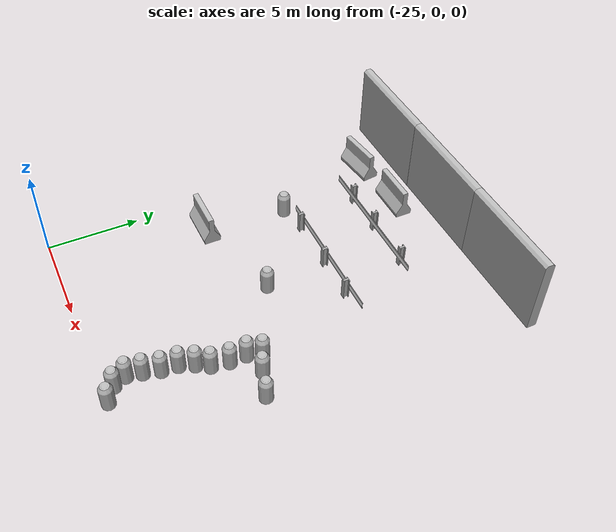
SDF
<sdf version="1.6">
 <world name="default">
  <model name="aws_robomaker_racetrack_CrashworthBucket_01_03">
   <link name="aws_CrashworthBucket_01::body">
    <inertial>
     <mass>5</mass>
     <inertia><ixx>1</ixx><ixy>0</ixy><ixz>0</ixz><iyy>1</iyy><iyz>0</iyz><izz>1</izz></inertia>
    </inertial>
    <visual name="visual">
     <geometry>
      <mesh>
       <uri>file://models/aws_robomaker_racetrack_CrashworthBucket_01/meshes/aws_CrashworthBucket_01_visual.DAE</uri>
      </mesh>
     </geometry>
     <material><shader type="pixel"><normal_map>__default__</normal_map></shader></material>
     <meta><layer>0</layer></meta>
    </visual>
    <collision name="collision_0">
     <geometry>
      <mesh>
       <uri>file://models/aws_robomaker_racetrack_CrashworthBucket_01/meshes/aws_CrashworthBucket_01_collision.DAE</uri>
       <scale>1 1 1</scale>
      </mesh>
     </geometry>
     <surface>
      <friction>
       <ode><mu>1</mu><mu2>1</mu2><fdir1>0 0 0</fdir1><slip1>0</slip1><slip2>0</slip2></ode>
       <torsional>
        <coefficient>1</coefficient>
        <patch_radius>0</patch_radius>
        <surface_radius>0</surface_radius>
        <use_patch_radius>1</use_patch_radius>
        <ode><slip>0</slip></ode>
       </torsional>
      </friction>
      <bounce><restitution_coefficient>0</restitution_coefficient><threshold>1e+06</threshold></bounce>
      <contact>
       <collide_without_contact>0</collide_without_contact>
       <collide_without_contact_bitmask>1</collide_without_contact_bitmask>
       <collide_bitmask>1</collide_bitmask>
       <ode>
        <soft_cfm>0</soft_cfm>
        <soft_erp>0.2</soft_erp>
        <kp>1e+13</kp>
        <kd>1</kd>
        <max_vel>0.01</max_vel>
        <min_depth>0</min_depth>
       </ode>
       <bullet>
        <split_impulse>1</split_impulse>
        <split_impulse_penetration_threshold>-0.01</split_impulse_penetration_threshold>
        <soft_cfm>0</soft_cfm>
        <soft_erp>0.2</soft_erp>
        <kp>1e+13</kp>
        <kd>1</kd>
       </bullet>
      </contact>
     </surface>
    </collision>
   </link>
   <static>1</static>
   <pose>-13.6938 6.13266 0.054 0 -0 0</pose>
  </model>
  <model name="aws_robomaker_racetrack_CrashworthBucket_01_20">
   <link name="aws_CrashworthBucket_01::body">
    <inertial>
     <mass>5</mass>
     <inertia><ixx>1</ixx><ixy>0</ixy><ixz>0</ixz><iyy>1</iyy><iyz>0</iyz><izz>1</izz></inertia>
    </inertial>
    <visual name="visual">
     <geometry>
      <mesh>
       <uri>file://models/aws_robomaker_racetrack_CrashworthBucket_01/meshes/aws_CrashworthBucket_01_visual.DAE</uri>
      </mesh>
     </geometry>
     <material><shader type="pixel"><normal_map>__default__</normal_map></shader></material>
     <meta><layer>0</layer></meta>
    </visual>
    <collision name="collision_0">
     <geometry>
      <mesh>
       <uri>file://models/aws_robomaker_racetrack_CrashworthBucket_01/meshes/aws_CrashworthBucket_01_collision.DAE</uri>
       <scale>1 1 1</scale>
      </mesh>
     </geometry>
     <surface>
      <friction>
       <ode><mu>1</mu><mu2>1</mu2><fdir1>0 0 0</fdir1><slip1>0</slip1><slip2>0</slip2></ode>
       <torsional>
        <coefficient>1</coefficient>
        <patch_radius>0</patch_radius>
        <surface_radius>0</surface_radius>
        <use_patch_radius>1</use_patch_radius>
        <ode><slip>0</slip></ode>
       </torsional>
      </friction>
      <bounce><restitution_coefficient>0</restitution_coefficient><threshold>1e+06</threshold></bounce>
      <contact>
       <collide_without_contact>0</collide_without_contact>
       <collide_without_contact_bitmask>1</collide_without_contact_bitmask>
       <collide_bitmask>1</collide_bitmask>
       <ode>
        <soft_cfm>0</soft_cfm>
        <soft_erp>0.2</soft_erp>
        <kp>1e+13</kp>
        <kd>1</kd>
        <max_vel>0.01</max_vel>
        <min_depth>0</min_depth>
       </ode>
       <bullet>
        <split_impulse>1</split_impulse>
        <split_impulse_penetration_threshold>-0.01</split_impulse_penetration_threshold>
        <soft_cfm>0</soft_cfm>
        <soft_erp>0.2</soft_erp>
        <kp>1e+13</kp>
        <kd>1</kd>
       </bullet>
      </contact>
     </surface>
    </collision>
   </link>
   <static>1</static>
   <pose>-22.169 12.8311 0 0 -0 0</pose>
  </model>
  <model name="aws_robomaker_racetrack_CrashworthBucket_01_21">
   <link name="aws_CrashworthBucket_01::body">
    <inertial>
     <mass>5</mass>
     <inertia><ixx>1</ixx><ixy>0</ixy><ixz>0</ixz><iyy>1</iyy><iyz>0</iyz><izz>1</izz></inertia>
    </inertial>
    <visual name="visual">
     <geometry>
      <mesh>
       <uri>file://models/aws_robomaker_racetrack_CrashworthBucket_01/meshes/aws_CrashworthBucket_01_visual.DAE</uri>
      </mesh>
     </geometry>
     <material><shader type="pixel"><normal_map>__default__</normal_map></shader></material>
     <meta><layer>0</layer></meta>
    </visual>
    <collision name="collision_0">
     <geometry>
      <mesh>
       <uri>file://models/aws_robomaker_racetrack_CrashworthBucket_01/meshes/aws_CrashworthBucket_01_collision.DAE</uri>
       <scale>1 1 1</scale>
      </mesh>
     </geometry>
     <surface>
      <friction>
       <ode><mu>1</mu><mu2>1</mu2><fdir1>0 0 0</fdir1><slip1>0</slip1><slip2>0</slip2></ode>
       <torsional>
        <coefficient>1</coefficient>
        <patch_radius>0</patch_radius>
        <surface_radius>0</surface_radius>
        <use_patch_radius>1</use_patch_radius>
        <ode><slip>0</slip></ode>
       </torsional>
      </friction>
      <bounce><restitution_coefficient>0</restitution_coefficient><threshold>1e+06</threshold></bounce>
      <contact>
       <collide_without_contact>0</collide_without_contact>
       <collide_without_contact_bitmask>1</collide_without_contact_bitmask>
       <collide_bitmask>1</collide_bitmask>
       <ode>
        <soft_cfm>0</soft_cfm>
        <soft_erp>0.2</soft_erp>
        <kp>1e+13</kp>
        <kd>1</kd>
        <max_vel>0.01</max_vel>
        <min_depth>0</min_depth>
       </ode>
       <bullet>
        <split_impulse>1</split_impulse>
        <split_impulse_penetration_threshold>-0.01</split_impulse_penetration_threshold>
        <soft_cfm>0</soft_cfm>
        <soft_erp>0.2</soft_erp>
        <kp>1e+13</kp>
        <kd>1</kd>
       </bullet>
      </contact>
     </surface>
    </collision>
   </link>
   <static>1</static>
   <pose>-17.3216 9.66872 0.054 0 -0 0</pose>
  </model>
  <model name="aws_robomaker_racetrack_CrashworthBucket_01_44">
   <link name="aws_CrashworthBucket_01::body">
    <inertial>
     <mass>5</mass>
     <inertia><ixx>1</ixx><ixy>0</ixy><ixz>0</ixz><iyy>1</iyy><iyz>0</iyz><izz>1</izz></inertia>
    </inertial>
    <visual name="visual">
     <geometry>
      <mesh>
       <uri>file://models/aws_robomaker_racetrack_CrashworthBucket_01/meshes/aws_CrashworthBucket_01_visual.DAE</uri>
      </mesh>
     </geometry>
     <material><shader type="pixel"><normal_map>__default__</normal_map></shader></material>
     <meta><layer>0</layer></meta>
    </visual>
    <collision name="collision_0">
     <geometry>
      <mesh>
       <uri>file://models/aws_robomaker_racetrack_CrashworthBucket_01/meshes/aws_CrashworthBucket_01_collision.DAE</uri>
       <scale>1 1 1</scale>
      </mesh>
     </geometry>
     <surface>
      <friction>
       <ode><mu>1</mu><mu2>1</mu2><fdir1>0 0 0</fdir1><slip1>0</slip1><slip2>0</slip2></ode>
       <torsional>
        <coefficient>1</coefficient>
        <patch_radius>0</patch_radius>
        <surface_radius>0</surface_radius>
        <use_patch_radius>1</use_patch_radius>
        <ode><slip>0</slip></ode>
       </torsional>
      </friction>
      <bounce><restitution_coefficient>0</restitution_coefficient><threshold>1e+06</threshold></bounce>
      <contact>
       <collide_without_contact>0</collide_without_contact>
       <collide_without_contact_bitmask>1</collide_without_contact_bitmask>
       <collide_bitmask>1</collide_bitmask>
       <ode>
        <soft_cfm>0</soft_cfm>
        <soft_erp>0.2</soft_erp>
        <kp>1e+13</kp>
        <kd>1</kd>
        <max_vel>0.01</max_vel>
        <min_depth>0</min_depth>
       </ode>
       <bullet>
        <split_impulse>1</split_impulse>
        <split_impulse_penetration_threshold>-0.01</split_impulse_penetration_threshold>
        <soft_cfm>0</soft_cfm>
        <soft_erp>0.2</soft_erp>
        <kp>1e+13</kp>
        <kd>1</kd>
       </bullet>
      </contact>
     </surface>
    </collision>
   </link>
   <static>1</static>
   <pose>-13.8311 5.21601 0.054 0 -0 0</pose>
  </model>
  <model name="aws_robomaker_racetrack_CrashworthBucket_01_55">
   <link name="aws_CrashworthBucket_01::body">
    <inertial>
     <mass>5</mass>
     <inertia><ixx>1</ixx><ixy>0</ixy><ixz>0</ixz><iyy>1</iyy><iyz>0</iyz><izz>1</izz></inertia>
    </inertial>
    <visual name="visual">
     <geometry>
      <mesh>
       <uri>file://models/aws_robomaker_racetrack_CrashworthBucket_01/meshes/aws_CrashworthBucket_01_visual.DAE</uri>
      </mesh>
     </geometry>
     <material><shader type="pixel"><normal_map>__default__</normal_map></shader></material>
     <meta><layer>0</layer></meta>
    </visual>
    <collision name="collision_0">
     <geometry>
      <mesh>
       <uri>file://models/aws_robomaker_racetrack_CrashworthBucket_01/meshes/aws_CrashworthBucket_01_collision.DAE</uri>
       <scale>1 1 1</scale>
      </mesh>
     </geometry>
     <surface>
      <friction>
       <ode><mu>1</mu><mu2>1</mu2><fdir1>0 0 0</fdir1><slip1>0</slip1><slip2>0</slip2></ode>
       <torsional>
        <coefficient>1</coefficient>
        <patch_radius>0</patch_radius>
        <surface_radius>0</surface_radius>
        <use_patch_radius>1</use_patch_radius>
        <ode><slip>0</slip></ode>
       </torsional>
      </friction>
      <bounce><restitution_coefficient>0</restitution_coefficient><threshold>1e+06</threshold></bounce>
      <contact>
       <collide_without_contact>0</collide_without_contact>
       <collide_without_contact_bitmask>1</collide_without_contact_bitmask>
       <collide_bitmask>1</collide_bitmask>
       <ode>
        <soft_cfm>0</soft_cfm>
        <soft_erp>0.2</soft_erp>
        <kp>1e+13</kp>
        <kd>1</kd>
        <max_vel>0.01</max_vel>
        <min_depth>0</min_depth>
       </ode>
       <bullet>
        <split_impulse>1</split_impulse>
        <split_impulse_penetration_threshold>-0.01</split_impulse_penetration_threshold>
        <soft_cfm>0</soft_cfm>
        <soft_erp>0.2</soft_erp>
        <kp>1e+13</kp>
        <kd>1</kd>
       </bullet>
      </contact>
     </surface>
    </collision>
   </link>
   <static>1</static>
   <pose>-11.2375 6.93335 0.054 0 -0 0</pose>
  </model>
  <model name="aws_robomaker_racetrack_CrashworthBucket_01_56">
   <link name="aws_CrashworthBucket_01::body">
    <inertial>
     <mass>5</mass>
     <inertia><ixx>1</ixx><ixy>0</ixy><ixz>0</ixz><iyy>1</iyy><iyz>0</iyz><izz>1</izz></inertia>
    </inertial>
    <visual name="visual">
     <geometry>
      <mesh>
       <uri>file://models/aws_robomaker_racetrack_CrashworthBucket_01/meshes/aws_CrashworthBucket_01_visual.DAE</uri>
      </mesh>
     </geometry>
     <material><shader type="pixel"><normal_map>__default__</normal_map></shader></material>
     <meta><layer>0</layer></meta>
    </visual>
    <collision name="collision_0">
     <geometry>
      <mesh>
       <uri>file://models/aws_robomaker_racetrack_CrashworthBucket_01/meshes/aws_CrashworthBucket_01_collision.DAE</uri>
       <scale>1 1 1</scale>
      </mesh>
     </geometry>
     <surface>
      <friction>
       <ode><mu>1</mu><mu2>1</mu2><fdir1>0 0 0</fdir1><slip1>0</slip1><slip2>0</slip2></ode>
       <torsional>
        <coefficient>1</coefficient>
        <patch_radius>0</patch_radius>
        <surface_radius>0</surface_radius>
        <use_patch_radius>1</use_patch_radius>
        <ode><slip>0</slip></ode>
       </torsional>
      </friction>
      <bounce><restitution_coefficient>0</restitution_coefficient><threshold>1e+06</threshold></bounce>
      <contact>
       <collide_without_contact>0</collide_without_contact>
       <collide_without_contact_bitmask>1</collide_without_contact_bitmask>
       <collide_bitmask>1</collide_bitmask>
       <ode>
        <soft_cfm>0</soft_cfm>
        <soft_erp>0.2</soft_erp>
        <kp>1e+13</kp>
        <kd>1</kd>
        <max_vel>0.01</max_vel>
        <min_depth>0</min_depth>
       </ode>
       <bullet>
        <split_impulse>1</split_impulse>
        <split_impulse_penetration_threshold>-0.01</split_impulse_penetration_threshold>
        <soft_cfm>0</soft_cfm>
        <soft_erp>0.2</soft_erp>
        <kp>1e+13</kp>
        <kd>1</kd>
       </bullet>
      </contact>
     </surface>
    </collision>
   </link>
   <static>1</static>
   <pose>-13.9209 0.216601 0.054 0 -0 0</pose>
  </model>
  <model name="aws_robomaker_racetrack_CrashworthBucket_01_60">
   <link name="aws_CrashworthBucket_01::body">
    <inertial>
     <mass>5</mass>
     <inertia><ixx>1</ixx><ixy>0</ixy><ixz>0</ixz><iyy>1</iyy><iyz>0</iyz><izz>1</izz></inertia>
    </inertial>
    <visual name="visual">
     <geometry>
      <mesh>
       <uri>file://models/aws_robomaker_racetrack_CrashworthBucket_01/meshes/aws_CrashworthBucket_01_visual.DAE</uri>
      </mesh>
     </geometry>
     <material><shader type="pixel"><normal_map>__default__</normal_map></shader></material>
     <meta><layer>0</layer></meta>
    </visual>
    <collision name="collision_0">
     <geometry>
      <mesh>
       <uri>file://models/aws_robomaker_racetrack_CrashworthBucket_01/meshes/aws_CrashworthBucket_01_collision.DAE</uri>
       <scale>1 1 1</scale>
      </mesh>
     </geometry>
     <surface>
      <friction>
       <ode><mu>1</mu><mu2>1</mu2><fdir1>0 0 0</fdir1><slip1>0</slip1><slip2>0</slip2></ode>
       <torsional>
        <coefficient>1</coefficient>
        <patch_radius>0</patch_radius>
        <surface_radius>0</surface_radius>
        <use_patch_radius>1</use_patch_radius>
        <ode><slip>0</slip></ode>
       </torsional>
      </friction>
      <bounce><restitution_coefficient>0</restitution_coefficient><threshold>1e+06</threshold></bounce>
      <contact>
       <collide_without_contact>0</collide_without_contact>
       <collide_without_contact_bitmask>1</collide_without_contact_bitmask>
       <collide_bitmask>1</collide_bitmask>
       <ode>
        <soft_cfm>0</soft_cfm>
        <soft_erp>0.2</soft_erp>
        <kp>1e+13</kp>
        <kd>1</kd>
        <max_vel>0.01</max_vel>
        <min_depth>0</min_depth>
       </ode>
       <bullet>
        <split_impulse>1</split_impulse>
        <split_impulse_penetration_threshold>-0.01</split_impulse_penetration_threshold>
        <soft_cfm>0</soft_cfm>
        <soft_erp>0.2</soft_erp>
        <kp>1e+13</kp>
        <kd>1</kd>
       </bullet>
      </contact>
     </surface>
    </collision>
   </link>
   <static>1</static>
   <pose>-14.6963 0.705029 0 0 -0 0.00632</pose>
  </model>
  <model name="aws_robomaker_racetrack_CrashworthBucket_01_61">
   <link name="aws_CrashworthBucket_01::body">
    <inertial>
     <mass>5</mass>
     <inertia><ixx>1</ixx><ixy>0</ixy><ixz>0</ixz><iyy>1</iyy><iyz>0</iyz><izz>1</izz></inertia>
    </inertial>
    <visual name="visual">
     <geometry>
      <mesh>
       <uri>file://models/aws_robomaker_racetrack_CrashworthBucket_01/meshes/aws_CrashworthBucket_01_visual.DAE</uri>
      </mesh>
     </geometry>
     <material><shader type="pixel"><normal_map>__default__</normal_map></shader></material>
     <meta><layer>0</layer></meta>
    </visual>
    <collision name="collision_0">
     <geometry>
      <mesh>
       <uri>file://models/aws_robomaker_racetrack_CrashworthBucket_01/meshes/aws_CrashworthBucket_01_collision.DAE</uri>
       <scale>1 1 1</scale>
      </mesh>
     </geometry>
     <surface>
      <friction>
       <ode><mu>1</mu><mu2>1</mu2><fdir1>0 0 0</fdir1><slip1>0</slip1><slip2>0</slip2></ode>
       <torsional>
        <coefficient>1</coefficient>
        <patch_radius>0</patch_radius>
        <surface_radius>0</surface_radius>
        <use_patch_radius>1</use_patch_radius>
        <ode><slip>0</slip></ode>
       </torsional>
      </friction>
      <bounce><restitution_coefficient>0</restitution_coefficient><threshold>1e+06</threshold></bounce>
      <contact>
       <collide_without_contact>0</collide_without_contact>
       <collide_without_contact_bitmask>1</collide_without_contact_bitmask>
       <collide_bitmask>1</collide_bitmask>
       <ode>
        <soft_cfm>0</soft_cfm>
        <soft_erp>0.2</soft_erp>
        <kp>1e+13</kp>
        <kd>1</kd>
        <max_vel>0.01</max_vel>
        <min_depth>0</min_depth>
       </ode>
       <bullet>
        <split_impulse>1</split_impulse>
        <split_impulse_penetration_threshold>-0.01</split_impulse_penetration_threshold>
        <soft_cfm>0</soft_cfm>
        <soft_erp>0.2</soft_erp>
        <kp>1e+13</kp>
        <kd>1</kd>
       </bullet>
      </contact>
     </surface>
    </collision>
   </link>
   <static>1</static>
   <pose>-14.205 4.57376 0.054 0 -0 0</pose>
  </model>
  <model name="aws_robomaker_racetrack_CrashworthBucket_01_62">
   <link name="aws_CrashworthBucket_01::body">
    <inertial>
     <mass>5</mass>
     <inertia><ixx>1</ixx><ixy>0</ixy><ixz>0</ixz><iyy>1</iyy><iyz>0</iyz><izz>1</izz></inertia>
    </inertial>
    <visual name="visual">
     <geometry>
      <mesh>
       <uri>file://models/aws_robomaker_racetrack_CrashworthBucket_01/meshes/aws_CrashworthBucket_01_visual.DAE</uri>
      </mesh>
     </geometry>
     <material><shader type="pixel"><normal_map>__default__</normal_map></shader></material>
     <meta><layer>0</layer></meta>
    </visual>
    <collision name="collision_0">
     <geometry>
      <mesh>
       <uri>file://models/aws_robomaker_racetrack_CrashworthBucket_01/meshes/aws_CrashworthBucket_01_collision.DAE</uri>
       <scale>1 1 1</scale>
      </mesh>
     </geometry>
     <surface>
      <friction>
       <ode><mu>1</mu><mu2>1</mu2><fdir1>0 0 0</fdir1><slip1>0</slip1><slip2>0</slip2></ode>
       <torsional>
        <coefficient>1</coefficient>
        <patch_radius>0</patch_radius>
        <surface_radius>0</surface_radius>
        <use_patch_radius>1</use_patch_radius>
        <ode><slip>0</slip></ode>
       </torsional>
      </friction>
      <bounce><restitution_coefficient>0</restitution_coefficient><threshold>1e+06</threshold></bounce>
      <contact>
       <collide_without_contact>0</collide_without_contact>
       <collide_without_contact_bitmask>1</collide_without_contact_bitmask>
       <collide_bitmask>1</collide_bitmask>
       <ode>
        <soft_cfm>0</soft_cfm>
        <soft_erp>0.2</soft_erp>
        <kp>1e+13</kp>
        <kd>1</kd>
        <max_vel>0.01</max_vel>
        <min_depth>0</min_depth>
       </ode>
       <bullet>
        <split_impulse>1</split_impulse>
        <split_impulse_penetration_threshold>-0.01</split_impulse_penetration_threshold>
        <soft_cfm>0</soft_cfm>
        <soft_erp>0.2</soft_erp>
        <kp>1e+13</kp>
        <kd>1</kd>
       </bullet>
      </contact>
     </surface>
    </collision>
   </link>
   <static>1</static>
   <pose>-14.8093 2.14739 0.054 0 -0 0</pose>
  </model>
  <model name="aws_robomaker_racetrack_CrashworthBucket_01_63">
   <link name="aws_CrashworthBucket_01::body">
    <inertial>
     <mass>5</mass>
     <inertia><ixx>1</ixx><ixy>0</ixy><ixz>0</ixz><iyy>1</iyy><iyz>0</iyz><izz>1</izz></inertia>
    </inertial>
    <visual name="visual">
     <geometry>
      <mesh>
       <uri>file://models/aws_robomaker_racetrack_CrashworthBucket_01/meshes/aws_CrashworthBucket_01_visual.DAE</uri>
      </mesh>
     </geometry>
     <material><shader type="pixel"><normal_map>__default__</normal_map></shader></material>
     <meta><layer>0</layer></meta>
    </visual>
    <collision name="collision_0">
     <geometry>
      <mesh>
       <uri>file://models/aws_robomaker_racetrack_CrashworthBucket_01/meshes/aws_CrashworthBucket_01_collision.DAE</uri>
       <scale>1 1 1</scale>
      </mesh>
     </geometry>
     <surface>
      <friction>
       <ode><mu>1</mu><mu2>1</mu2><fdir1>0 0 0</fdir1><slip1>0</slip1><slip2>0</slip2></ode>
       <torsional>
        <coefficient>1</coefficient>
        <patch_radius>0</patch_radius>
        <surface_radius>0</surface_radius>
        <use_patch_radius>1</use_patch_radius>
        <ode><slip>0</slip></ode>
       </torsional>
      </friction>
      <bounce><restitution_coefficient>0</restitution_coefficient><threshold>1e+06</threshold></bounce>
      <contact>
       <collide_without_contact>0</collide_without_contact>
       <collide_without_contact_bitmask>1</collide_without_contact_bitmask>
       <collide_bitmask>1</collide_bitmask>
       <ode>
        <soft_cfm>0</soft_cfm>
        <soft_erp>0.2</soft_erp>
        <kp>1e+13</kp>
        <kd>1</kd>
        <max_vel>0.01</max_vel>
        <min_depth>0</min_depth>
       </ode>
       <bullet>
        <split_impulse>1</split_impulse>
        <split_impulse_penetration_threshold>-0.01</split_impulse_penetration_threshold>
        <soft_cfm>0</soft_cfm>
        <soft_erp>0.2</soft_erp>
        <kp>1e+13</kp>
        <kd>1</kd>
       </bullet>
      </contact>
     </surface>
    </collision>
   </link>
   <static>1</static>
   <pose>-14.964 1.3691 0.054 0 -0 0.003001</pose>
  </model>
  <model name="aws_robomaker_racetrack_CrashworthBucket_01_64">
   <link name="aws_CrashworthBucket_01::body">
    <inertial>
     <mass>5</mass>
     <inertia><ixx>1</ixx><ixy>0</ixy><ixz>0</ixz><iyy>1</iyy><iyz>0</iyz><izz>1</izz></inertia>
    </inertial>
    <visual name="visual">
     <geometry>
      <mesh>
       <uri>file://models/aws_robomaker_racetrack_CrashworthBucket_01/meshes/aws_CrashworthBucket_01_visual.DAE</uri>
      </mesh>
     </geometry>
     <material><shader type="pixel"><normal_map>__default__</normal_map></shader></material>
     <meta><layer>0</layer></meta>
    </visual>
    <collision name="collision_0">
     <geometry>
      <mesh>
       <uri>file://models/aws_robomaker_racetrack_CrashworthBucket_01/meshes/aws_CrashworthBucket_01_collision.DAE</uri>
       <scale>1 1 1</scale>
      </mesh>
     </geometry>
     <surface>
      <friction>
       <ode><mu>1</mu><mu2>1</mu2><fdir1>0 0 0</fdir1><slip1>0</slip1><slip2>0</slip2></ode>
       <torsional>
        <coefficient>1</coefficient>
        <patch_radius>0</patch_radius>
        <surface_radius>0</surface_radius>
        <use_patch_radius>1</use_patch_radius>
        <ode><slip>0</slip></ode>
       </torsional>
      </friction>
      <bounce><restitution_coefficient>0</restitution_coefficient><threshold>1e+06</threshold></bounce>
      <contact>
       <collide_without_contact>0</collide_without_contact>
       <collide_without_contact_bitmask>1</collide_without_contact_bitmask>
       <collide_bitmask>1</collide_bitmask>
       <ode>
        <soft_cfm>0</soft_cfm>
        <soft_erp>0.2</soft_erp>
        <kp>1e+13</kp>
        <kd>1</kd>
        <max_vel>0.01</max_vel>
        <min_depth>0</min_depth>
       </ode>
       <bullet>
        <split_impulse>1</split_impulse>
        <split_impulse_penetration_threshold>-0.01</split_impulse_penetration_threshold>
        <soft_cfm>0</soft_cfm>
        <soft_erp>0.2</soft_erp>
        <kp>1e+13</kp>
        <kd>1</kd>
       </bullet>
      </contact>
     </surface>
    </collision>
   </link>
   <static>1</static>
   <pose>-14.5066 3.82709 0.054 0 0 -0.127634</pose>
  </model>
  <model name="aws_robomaker_racetrack_CrashworthBucket_01_65">
   <link name="aws_CrashworthBucket_01::body">
    <inertial>
     <mass>5</mass>
     <inertia><ixx>1</ixx><ixy>0</ixy><ixz>0</ixz><iyy>1</iyy><iyz>0</iyz><izz>1</izz></inertia>
    </inertial>
    <visual name="visual">
     <geometry>
      <mesh>
       <uri>file://models/aws_robomaker_racetrack_CrashworthBucket_01/meshes/aws_CrashworthBucket_01_visual.DAE</uri>
      </mesh>
     </geometry>
     <material><shader type="pixel"><normal_map>__default__</normal_map></shader></material>
     <meta><layer>0</layer></meta>
    </visual>
    <collision name="collision_0">
     <geometry>
      <mesh>
       <uri>file://models/aws_robomaker_racetrack_CrashworthBucket_01/meshes/aws_CrashworthBucket_01_collision.DAE</uri>
       <scale>1 1 1</scale>
      </mesh>
     </geometry>
     <surface>
      <friction>
       <ode><mu>1</mu><mu2>1</mu2><fdir1>0 0 0</fdir1><slip1>0</slip1><slip2>0</slip2></ode>
       <torsional>
        <coefficient>1</coefficient>
        <patch_radius>0</patch_radius>
        <surface_radius>0</surface_radius>
        <use_patch_radius>1</use_patch_radius>
        <ode><slip>0</slip></ode>
       </torsional>
      </friction>
      <bounce><restitution_coefficient>0</restitution_coefficient><threshold>1e+06</threshold></bounce>
      <contact>
       <collide_without_contact>0</collide_without_contact>
       <collide_without_contact_bitmask>1</collide_without_contact_bitmask>
       <collide_bitmask>1</collide_bitmask>
       <ode>
        <soft_cfm>0</soft_cfm>
        <soft_erp>0.2</soft_erp>
        <kp>1e+13</kp>
        <kd>1</kd>
        <max_vel>0.01</max_vel>
        <min_depth>0</min_depth>
       </ode>
       <bullet>
        <split_impulse>1</split_impulse>
        <split_impulse_penetration_threshold>-0.01</split_impulse_penetration_threshold>
        <soft_cfm>0</soft_cfm>
        <soft_erp>0.2</soft_erp>
        <kp>1e+13</kp>
        <kd>1</kd>
       </bullet>
      </contact>
     </surface>
    </collision>
   </link>
   <static>1</static>
   <pose>-14.5756 2.99063 0.054 0 -0 0</pose>
  </model>
  <model name="aws_robomaker_racetrack_CrashworthBucket_01_66">
   <link name="aws_CrashworthBucket_01::body">
    <inertial>
     <mass>5</mass>
     <inertia><ixx>1</ixx><ixy>0</ixy><ixz>0</ixz><iyy>1</iyy><iyz>0</iyz><izz>1</izz></inertia>
    </inertial>
    <visual name="visual">
     <geometry>
      <mesh>
       <uri>file://models/aws_robomaker_racetrack_CrashworthBucket_01/meshes/aws_CrashworthBucket_01_visual.DAE</uri>
      </mesh>
     </geometry>
     <material><shader type="pixel"><normal_map>__default__</normal_map></shader></material>
     <meta><layer>0</layer></meta>
    </visual>
    <collision name="collision_0">
     <geometry>
      <mesh>
       <uri>file://models/aws_robomaker_racetrack_CrashworthBucket_01/meshes/aws_CrashworthBucket_01_collision.DAE</uri>
       <scale>1 1 1</scale>
      </mesh>
     </geometry>
     <surface>
      <friction>
       <ode><mu>1</mu><mu2>1</mu2><fdir1>0 0 0</fdir1><slip1>0</slip1><slip2>0</slip2></ode>
       <torsional>
        <coefficient>1</coefficient>
        <patch_radius>0</patch_radius>
        <surface_radius>0</surface_radius>
        <use_patch_radius>1</use_patch_radius>
        <ode><slip>0</slip></ode>
       </torsional>
      </friction>
      <bounce><restitution_coefficient>0</restitution_coefficient><threshold>1e+06</threshold></bounce>
      <contact>
       <collide_without_contact>0</collide_without_contact>
       <collide_without_contact_bitmask>1</collide_without_contact_bitmask>
       <collide_bitmask>1</collide_bitmask>
       <ode>
        <soft_cfm>0</soft_cfm>
        <soft_erp>0.2</soft_erp>
        <kp>1e+13</kp>
        <kd>1</kd>
        <max_vel>0.01</max_vel>
        <min_depth>0</min_depth>
       </ode>
       <bullet>
        <split_impulse>1</split_impulse>
        <split_impulse_penetration_threshold>-0.01</split_impulse_penetration_threshold>
        <soft_cfm>0</soft_cfm>
        <soft_erp>0.2</soft_erp>
        <kp>1e+13</kp>
        <kd>1</kd>
       </bullet>
      </contact>
     </surface>
    </collision>
   </link>
   <static>1</static>
   <pose>-13.7254 7.00826 0.054 0 -0 0</pose>
  </model>
  <model name="aws_robomaker_racetrack_CrashworthBucket_01_67">
   <link name="aws_CrashworthBucket_01::body">
    <inertial>
     <mass>5</mass>
     <inertia><ixx>1</ixx><ixy>0</ixy><ixz>0</ixz><iyy>1</iyy><iyz>0</iyz><izz>1</izz></inertia>
    </inertial>
    <visual name="visual">
     <geometry>
      <mesh>
       <uri>file://models/aws_robomaker_racetrack_CrashworthBucket_01/meshes/aws_CrashworthBucket_01_visual.DAE</uri>
      </mesh>
     </geometry>
     <material><shader type="pixel"><normal_map>__default__</normal_map></shader></material>
     <meta><layer>0</layer></meta>
    </visual>
    <collision name="collision_0">
     <geometry>
      <mesh>
       <uri>file://models/aws_robomaker_racetrack_CrashworthBucket_01/meshes/aws_CrashworthBucket_01_collision.DAE</uri>
       <scale>1 1 1</scale>
      </mesh>
     </geometry>
     <surface>
      <friction>
       <ode><mu>1</mu><mu2>1</mu2><fdir1>0 0 0</fdir1><slip1>0</slip1><slip2>0</slip2></ode>
       <torsional>
        <coefficient>1</coefficient>
        <patch_radius>0</patch_radius>
        <surface_radius>0</surface_radius>
        <use_patch_radius>1</use_patch_radius>
        <ode><slip>0</slip></ode>
       </torsional>
      </friction>
      <bounce><restitution_coefficient>0</restitution_coefficient><threshold>1e+06</threshold></bounce>
      <contact>
       <collide_without_contact>0</collide_without_contact>
       <collide_without_contact_bitmask>1</collide_without_contact_bitmask>
       <collide_bitmask>1</collide_bitmask>
       <ode>
        <soft_cfm>0</soft_cfm>
        <soft_erp>0.2</soft_erp>
        <kp>1e+13</kp>
        <kd>1</kd>
        <max_vel>0.01</max_vel>
        <min_depth>0</min_depth>
       </ode>
       <bullet>
        <split_impulse>1</split_impulse>
        <split_impulse_penetration_threshold>-0.01</split_impulse_penetration_threshold>
        <soft_cfm>0</soft_cfm>
        <soft_erp>0.2</soft_erp>
        <kp>1e+13</kp>
        <kd>1</kd>
       </bullet>
      </contact>
     </surface>
    </collision>
   </link>
   <static>1</static>
   <pose>-13.4797 7.73167 0.054 0 -0 0</pose>
  </model>
  <model name="aws_robomaker_racetrack_CrashworthBucket_01_68">
   <link name="aws_CrashworthBucket_01::body">
    <inertial>
     <mass>5</mass>
     <inertia><ixx>1</ixx><ixy>0</ixy><ixz>0</ixz><iyy>1</iyy><iyz>0</iyz><izz>1</izz></inertia>
    </inertial>
    <visual name="visual">
     <geometry>
      <mesh>
       <uri>file://models/aws_robomaker_racetrack_CrashworthBucket_01/meshes/aws_CrashworthBucket_01_visual.DAE</uri>
      </mesh>
     </geometry>
     <material><shader type="pixel"><normal_map>__default__</normal_map></shader></material>
     <meta><layer>0</layer></meta>
    </visual>
    <collision name="collision_0">
     <geometry>
      <mesh>
       <uri>file://models/aws_robomaker_racetrack_CrashworthBucket_01/meshes/aws_CrashworthBucket_01_collision.DAE</uri>
       <scale>1 1 1</scale>
      </mesh>
     </geometry>
     <surface>
      <friction>
       <ode><mu>1</mu><mu2>1</mu2><fdir1>0 0 0</fdir1><slip1>0</slip1><slip2>0</slip2></ode>
       <torsional>
        <coefficient>1</coefficient>
        <patch_radius>0</patch_radius>
        <surface_radius>0</surface_radius>
        <use_patch_radius>1</use_patch_radius>
        <ode><slip>0</slip></ode>
       </torsional>
      </friction>
      <bounce><restitution_coefficient>0</restitution_coefficient><threshold>1e+06</threshold></bounce>
      <contact>
       <collide_without_contact>0</collide_without_contact>
       <collide_without_contact_bitmask>1</collide_without_contact_bitmask>
       <collide_bitmask>1</collide_bitmask>
       <ode>
        <soft_cfm>0</soft_cfm>
        <soft_erp>0.2</soft_erp>
        <kp>1e+13</kp>
        <kd>1</kd>
        <max_vel>0.01</max_vel>
        <min_depth>0</min_depth>
       </ode>
       <bullet>
        <split_impulse>1</split_impulse>
        <split_impulse_penetration_threshold>-0.01</split_impulse_penetration_threshold>
        <soft_cfm>0</soft_cfm>
        <soft_erp>0.2</soft_erp>
        <kp>1e+13</kp>
        <kd>1</kd>
       </bullet>
      </contact>
     </surface>
    </collision>
   </link>
   <static>1</static>
   <pose>-12.5612 7.3288 0.054 0 -0 0</pose>
  </model>
  <model name="aws_robomaker_racetrack_Fence_01_03">
   <link name="aws_Fence_01::body">
    <inertial>
     <mass>5</mass>
     <inertia><ixx>1</ixx><ixy>0</ixy><ixz>0</ixz><iyy>1</iyy><iyz>0</iyz><izz>1</izz></inertia>
    </inertial>
    <visual name="visual">
     <geometry>
      <mesh><uri>file://models/aws_robomaker_racetrack_Fence_01/meshes/aws_Fence_01_visual.DAE</uri></mesh>
     </geometry>
     <material><shader type="pixel"><normal_map>__default__</normal_map></shader></material>
     <meta><layer>0</layer></meta>
    </visual>
    <collision name="collision_0">
     <geometry>
      <mesh>
       <uri>file://models/aws_robomaker_racetrack_Fence_01/meshes/aws_Fence_01_collision.DAE</uri>
       <scale>1 1 1</scale>
      </mesh>
     </geometry>
     <surface>
      <friction>
       <ode><mu>1</mu><mu2>1</mu2><fdir1>0 0 0</fdir1><slip1>0</slip1><slip2>0</slip2></ode>
       <torsional>
        <coefficient>1</coefficient>
        <patch_radius>0</patch_radius>
        <surface_radius>0</surface_radius>
        <use_patch_radius>1</use_patch_radius>
        <ode><slip>0</slip></ode>
       </torsional>
      </friction>
      <bounce><restitution_coefficient>0</restitution_coefficient><threshold>1e+06</threshold></bounce>
      <contact>
       <collide_without_contact>0</collide_without_contact>
       <collide_without_contact_bitmask>1</collide_without_contact_bitmask>
       <collide_bitmask>1</collide_bitmask>
       <ode>
        <soft_cfm>0</soft_cfm>
        <soft_erp>0.2</soft_erp>
        <kp>1e+13</kp>
        <kd>1</kd>
        <max_vel>0.01</max_vel>
        <min_depth>0</min_depth>
       </ode>
       <bullet>
        <split_impulse>1</split_impulse>
        <split_impulse_penetration_threshold>-0.01</split_impulse_penetration_threshold>
        <soft_cfm>0</soft_cfm>
        <soft_erp>0.2</soft_erp>
        <kp>1e+13</kp>
        <kd>1</kd>
       </bullet>
      </contact>
     </surface>
    </collision>
   </link>
   <static>1</static>
   <pose>-17.6812 13.1587 0 0 0 -1.57272</pose>
  </model>
  <model name="aws_robomaker_racetrack_Fence_01_12">
   <link name="aws_Fence_01::body">
    <inertial>
     <mass>5</mass>
     <inertia><ixx>1</ixx><ixy>0</ixy><ixz>0</ixz><iyy>1</iyy><iyz>0</iyz><izz>1</izz></inertia>
    </inertial>
    <visual name="visual">
     <geometry>
      <mesh><uri>file://models/aws_robomaker_racetrack_Fence_01/meshes/aws_Fence_01_visual.DAE</uri></mesh>
     </geometry>
     <material><shader type="pixel"><normal_map>__default__</normal_map></shader></material>
     <meta><layer>0</layer></meta>
    </visual>
    <collision name="collision_0">
     <geometry>
      <mesh>
       <uri>file://models/aws_robomaker_racetrack_Fence_01/meshes/aws_Fence_01_collision.DAE</uri>
       <scale>1 1 1</scale>
      </mesh>
     </geometry>
     <surface>
      <friction>
       <ode><mu>1</mu><mu2>1</mu2><fdir1>0 0 0</fdir1><slip1>0</slip1><slip2>0</slip2></ode>
       <torsional>
        <coefficient>1</coefficient>
        <patch_radius>0</patch_radius>
        <surface_radius>0</surface_radius>
        <use_patch_radius>1</use_patch_radius>
        <ode><slip>0</slip></ode>
       </torsional>
      </friction>
      <bounce><restitution_coefficient>0</restitution_coefficient><threshold>1e+06</threshold></bounce>
      <contact>
       <collide_without_contact>0</collide_without_contact>
       <collide_without_contact_bitmask>1</collide_without_contact_bitmask>
       <collide_bitmask>1</collide_bitmask>
       <ode>
        <soft_cfm>0</soft_cfm>
        <soft_erp>0.2</soft_erp>
        <kp>1e+13</kp>
        <kd>1</kd>
        <max_vel>0.01</max_vel>
        <min_depth>0</min_depth>
       </ode>
       <bullet>
        <split_impulse>1</split_impulse>
        <split_impulse_penetration_threshold>-0.01</split_impulse_penetration_threshold>
        <soft_cfm>0</soft_cfm>
        <soft_erp>0.2</soft_erp>
        <kp>1e+13</kp>
        <kd>1</kd>
       </bullet>
      </contact>
     </surface>
    </collision>
   </link>
   <static>1</static>
   <pose>-18.8827 16.8189 0.054 0 -0 1.57158</pose>
  </model>
  <model name="aws_robomaker_racetrack_StonePier_01_02">
   <link name="aws_StonePier_01::body">
    <inertial>
     <mass>10</mass>
     <inertia><ixx>0</ixx><ixy>0</ixy><ixz>0</ixz><iyy>0</iyy><iyz>0</iyz><izz>0</izz></inertia>
    </inertial>
    <visual name="visual">
     <geometry>
      <mesh><uri>file://models/aws_robomaker_racetrack_StonePier_01/meshes/aws_StonePier_01_visual.DAE</uri></mesh>
     </geometry>
     <material><shader type="pixel"><normal_map>__default__</normal_map></shader></material>
     <meta><layer>0</layer></meta>
    </visual>
    <collision name="collision_0">
     <geometry>
      <mesh>
       <uri>file://models/aws_robomaker_racetrack_StonePier_01/meshes/aws_StonePier_01_collision.DAE</uri>
       <scale>1 1 1</scale>
      </mesh>
     </geometry>
     <surface>
      <friction>
       <ode><mu>1</mu><mu2>1</mu2><fdir1>0 0 0</fdir1><slip1>0</slip1><slip2>0</slip2></ode>
       <torsional>
        <coefficient>1</coefficient>
        <patch_radius>0</patch_radius>
        <surface_radius>0</surface_radius>
        <use_patch_radius>1</use_patch_radius>
        <ode><slip>0</slip></ode>
       </torsional>
      </friction>
      <bounce><restitution_coefficient>0</restitution_coefficient><threshold>1e+06</threshold></bounce>
      <contact>
       <collide_without_contact>0</collide_without_contact>
       <collide_without_contact_bitmask>1</collide_without_contact_bitmask>
       <collide_bitmask>1</collide_bitmask>
       <ode>
        <soft_cfm>0</soft_cfm>
        <soft_erp>0.2</soft_erp>
        <kp>1e+13</kp>
        <kd>1</kd>
        <max_vel>0.01</max_vel>
        <min_depth>0</min_depth>
       </ode>
       <bullet>
        <split_impulse>1</split_impulse>
        <split_impulse_penetration_threshold>-0.01</split_impulse_penetration_threshold>
        <soft_cfm>0</soft_cfm>
        <soft_erp>0.2</soft_erp>
        <kp>1e+13</kp>
        <kd>1</kd>
       </bullet>
      </contact>
     </surface>
    </collision>
   </link>
   <static>1</static>
   <pose>-22.8128 8.293 0.054 0 -0 0.009742</pose>
  </model>
  <model name="aws_robomaker_racetrack_StonePier_01_04">
   <link name="aws_StonePier_01::body">
    <inertial>
     <mass>10</mass>
     <inertia><ixx>0</ixx><ixy>0</ixy><ixz>0</ixz><iyy>0</iyy><iyz>0</iyz><izz>0</izz></inertia>
    </inertial>
    <visual name="visual">
     <geometry>
      <mesh><uri>file://models/aws_robomaker_racetrack_StonePier_01/meshes/aws_StonePier_01_visual.DAE</uri></mesh>
     </geometry>
     <material><shader type="pixel"><normal_map>__default__</normal_map></shader></material>
     <meta><layer>0</layer></meta>
    </visual>
    <collision name="collision_0">
     <geometry>
      <mesh>
       <uri>file://models/aws_robomaker_racetrack_StonePier_01/meshes/aws_StonePier_01_collision.DAE</uri>
       <scale>1 1 1</scale>
      </mesh>
     </geometry>
     <surface>
      <friction>
       <ode><mu>1</mu><mu2>1</mu2><fdir1>0 0 0</fdir1><slip1>0</slip1><slip2>0</slip2></ode>
       <torsional>
        <coefficient>1</coefficient>
        <patch_radius>0</patch_radius>
        <surface_radius>0</surface_radius>
        <use_patch_radius>1</use_patch_radius>
        <ode><slip>0</slip></ode>
       </torsional>
      </friction>
      <bounce><restitution_coefficient>0</restitution_coefficient><threshold>1e+06</threshold></bounce>
      <contact>
       <collide_without_contact>0</collide_without_contact>
       <collide_without_contact_bitmask>1</collide_without_contact_bitmask>
       <collide_bitmask>1</collide_bitmask>
       <ode>
        <soft_cfm>0</soft_cfm>
        <soft_erp>0.2</soft_erp>
        <kp>1e+13</kp>
        <kd>1</kd>
        <max_vel>0.01</max_vel>
        <min_depth>0</min_depth>
       </ode>
       <bullet>
        <split_impulse>1</split_impulse>
        <split_impulse_penetration_threshold>-0.01</split_impulse_penetration_threshold>
        <soft_cfm>0</soft_cfm>
        <soft_erp>0.2</soft_erp>
        <kp>1e+13</kp>
        <kd>1</kd>
       </bullet>
      </contact>
     </surface>
    </collision>
   </link>
   <static>1</static>
   <pose>-20.3219 18.8912 0.054 0 -0 0.009742</pose>
  </model>
  <model name="aws_robomaker_racetrack_StonePier_01_35">
   <link name="aws_StonePier_01::body">
    <inertial>
     <mass>10</mass>
     <inertia><ixx>0</ixx><ixy>0</ixy><ixz>0</ixz><iyy>0</iyy><iyz>0</iyz><izz>0</izz></inertia>
    </inertial>
    <visual name="visual">
     <geometry>
      <mesh><uri>file://models/aws_robomaker_racetrack_StonePier_01/meshes/aws_StonePier_01_visual.DAE</uri></mesh>
     </geometry>
     <material><shader type="pixel"><normal_map>__default__</normal_map></shader></material>
     <meta><layer>0</layer></meta>
    </visual>
    <collision name="collision_0">
     <geometry>
      <mesh>
       <uri>file://models/aws_robomaker_racetrack_StonePier_01/meshes/aws_StonePier_01_collision.DAE</uri>
       <scale>1 1 1</scale>
      </mesh>
     </geometry>
     <surface>
      <friction>
       <ode><mu>1</mu><mu2>1</mu2><fdir1>0 0 0</fdir1><slip1>0</slip1><slip2>0</slip2></ode>
       <torsional>
        <coefficient>1</coefficient>
        <patch_radius>0</patch_radius>
        <surface_radius>0</surface_radius>
        <use_patch_radius>1</use_patch_radius>
        <ode><slip>0</slip></ode>
       </torsional>
      </friction>
      <bounce><restitution_coefficient>0</restitution_coefficient><threshold>1e+06</threshold></bounce>
      <contact>
       <collide_without_contact>0</collide_without_contact>
       <collide_without_contact_bitmask>1</collide_without_contact_bitmask>
       <collide_bitmask>1</collide_bitmask>
       <ode>
        <soft_cfm>0</soft_cfm>
        <soft_erp>0.2</soft_erp>
        <kp>1e+13</kp>
        <kd>1</kd>
        <max_vel>0.01</max_vel>
        <min_depth>0</min_depth>
       </ode>
       <bullet>
        <split_impulse>1</split_impulse>
        <split_impulse_penetration_threshold>-0.01</split_impulse_penetration_threshold>
        <soft_cfm>0</soft_cfm>
        <soft_erp>0.2</soft_erp>
        <kp>1e+13</kp>
        <kd>1</kd>
       </bullet>
      </contact>
     </surface>
    </collision>
   </link>
   <static>1</static>
   <pose>-23.832 18.561 0.054 0 -0 0.133251</pose>
  </model>
  <model name="aws_robomaker_racetrack_Wall_01_04">
   <link name="aws_Wall_01::body">
    <inertial>
     <mass>500</mass>
     <inertia><ixx>1</ixx><ixy>0</ixy><ixz>0</ixz><iyy>1</iyy><iyz>0</iyz><izz>1</izz></inertia>
    </inertial>
    <visual name="visual">
     <geometry>
      <mesh>
       <uri>file://models/aws_robomaker_racetrack_Wall_01/meshes/aws_Wall_01_visual.DAE</uri>
       <scale>2.59853 2.59853 2.59853</scale>
      </mesh>
     </geometry>
     <material><shader type="pixel"><normal_map>__default__</normal_map></shader></material>
     <meta><layer>1</layer></meta>
    </visual>
    <collision name="collision_0">
     <geometry>
      <mesh>
       <uri>file://models/aws_robomaker_racetrack_Wall_01/meshes/aws_Wall_01_collision.DAE</uri>
       <scale>2.59853 2.59853 2.59853</scale>
      </mesh>
     </geometry>
     <surface>
      <friction>
       <ode><mu>1</mu><mu2>1</mu2><fdir1>0 0 0</fdir1><slip1>0</slip1><slip2>0</slip2></ode>
       <torsional>
        <coefficient>1</coefficient>
        <patch_radius>0</patch_radius>
        <surface_radius>0</surface_radius>
        <use_patch_radius>1</use_patch_radius>
        <ode><slip>0</slip></ode>
       </torsional>
      </friction>
      <bounce><restitution_coefficient>0</restitution_coefficient><threshold>1e+06</threshold></bounce>
      <contact>
       <collide_without_contact>0</collide_without_contact>
       <collide_without_contact_bitmask>1</collide_without_contact_bitmask>
       <collide_bitmask>1</collide_bitmask>
       <ode>
        <soft_cfm>0</soft_cfm>
        <soft_erp>0.2</soft_erp>
        <kp>1e+13</kp>
        <kd>1</kd>
        <max_vel>0.01</max_vel>
        <min_depth>0</min_depth>
       </ode>
       <bullet>
        <split_impulse>1</split_impulse>
        <split_impulse_penetration_threshold>-0.01</split_impulse_penetration_threshold>
        <soft_cfm>0</soft_cfm>
        <soft_erp>0.2</soft_erp>
        <kp>1e+13</kp>
        <kd>1</kd>
       </bullet>
      </contact>
     </surface>
    </collision>
   </link>
   <static>1</static>
   <pose>-12.5489 20.683 0 0 -0 0</pose>
  </model>
  <model name="aws_robomaker_racetrack_Wall_01_05">
   <link name="aws_Wall_01::body">
    <inertial>
     <mass>500</mass>
     <inertia><ixx>1</ixx><ixy>0</ixy><ixz>0</ixz><iyy>1</iyy><iyz>0</iyz><izz>1</izz></inertia>
    </inertial>
    <visual name="visual">
     <geometry>
      <mesh>
       <uri>file://models/aws_robomaker_racetrack_Wall_01/meshes/aws_Wall_01_visual.DAE</uri>
       <scale>2.59853 2.59853 2.59853</scale>
      </mesh>
     </geometry>
     <material><shader type="pixel"><normal_map>__default__</normal_map></shader></material>
     <meta><layer>1</layer></meta>
    </visual>
    <collision name="collision_0">
     <geometry>
      <mesh>
       <uri>file://models/aws_robomaker_racetrack_Wall_01/meshes/aws_Wall_01_collision.DAE</uri>
       <scale>2.59853 2.59853 2.59853</scale>
      </mesh>
     </geometry>
     <surface>
      <friction>
       <ode><mu>1</mu><mu2>1</mu2><fdir1>0 0 0</fdir1><slip1>0</slip1><slip2>0</slip2></ode>
       <torsional>
        <coefficient>1</coefficient>
        <patch_radius>0</patch_radius>
        <surface_radius>0</surface_radius>
        <use_patch_radius>1</use_patch_radius>
        <ode><slip>0</slip></ode>
       </torsional>
      </friction>
      <bounce><restitution_coefficient>0</restitution_coefficient><threshold>1e+06</threshold></bounce>
      <contact>
       <collide_without_contact>0</collide_without_contact>
       <collide_without_contact_bitmask>1</collide_without_contact_bitmask>
       <collide_bitmask>1</collide_bitmask>
       <ode>
        <soft_cfm>0</soft_cfm>
        <soft_erp>0.2</soft_erp>
        <kp>1e+13</kp>
        <kd>1</kd>
        <max_vel>0.01</max_vel>
        <min_depth>0</min_depth>
       </ode>
       <bullet>
        <split_impulse>1</split_impulse>
        <split_impulse_penetration_threshold>-0.01</split_impulse_penetration_threshold>
        <soft_cfm>0</soft_cfm>
        <soft_erp>0.2</soft_erp>
        <kp>1e+13</kp>
        <kd>1</kd>
       </bullet>
      </contact>
     </surface>
    </collision>
   </link>
   <static>1</static>
   <pose>-18.3809 20.685 0 0 -0 0</pose>
  </model>
  <model name="aws_robomaker_racetrack_Wall_01_06">
   <link name="aws_Wall_01::body">
    <inertial>
     <mass>500</mass>
     <inertia><ixx>1</ixx><ixy>0</ixy><ixz>0</ixz><iyy>1</iyy><iyz>0</iyz><izz>1</izz></inertia>
    </inertial>
    <visual name="visual">
     <geometry>
      <mesh>
       <uri>file://models/aws_robomaker_racetrack_Wall_01/meshes/aws_Wall_01_visual.DAE</uri>
       <scale>2.59853 2.59853 2.59853</scale>
      </mesh>
     </geometry>
     <material><shader type="pixel"><normal_map>__default__</normal_map></shader></material>
     <meta><layer>1</layer></meta>
    </visual>
    <collision name="collision_0">
     <geometry>
      <mesh>
       <uri>file://models/aws_robomaker_racetrack_Wall_01/meshes/aws_Wall_01_collision.DAE</uri>
       <scale>2.59853 2.59853 2.59853</scale>
      </mesh>
     </geometry>
     <surface>
      <friction>
       <ode><mu>1</mu><mu2>1</mu2><fdir1>0 0 0</fdir1><slip1>0</slip1><slip2>0</slip2></ode>
       <torsional>
        <coefficient>1</coefficient>
        <patch_radius>0</patch_radius>
        <surface_radius>0</surface_radius>
        <use_patch_radius>1</use_patch_radius>
        <ode><slip>0</slip></ode>
       </torsional>
      </friction>
      <bounce><restitution_coefficient>0</restitution_coefficient><threshold>1e+06</threshold></bounce>
      <contact>
       <collide_without_contact>0</collide_without_contact>
       <collide_without_contact_bitmask>1</collide_without_contact_bitmask>
       <collide_bitmask>1</collide_bitmask>
       <ode>
        <soft_cfm>0</soft_cfm>
        <soft_erp>0.2</soft_erp>
        <kp>1e+13</kp>
        <kd>1</kd>
        <max_vel>0.01</max_vel>
        <min_depth>0</min_depth>
       </ode>
       <bullet>
        <split_impulse>1</split_impulse>
        <split_impulse_penetration_threshold>-0.01</split_impulse_penetration_threshold>
        <soft_cfm>0</soft_cfm>
        <soft_erp>0.2</soft_erp>
        <kp>1e+13</kp>
        <kd>1</kd>
       </bullet>
      </contact>
     </surface>
    </collision>
   </link>
   <static>1</static>
   <pose>-24.2154 20.6835 0 0 -0 0</pose>
  </model>
  <model name="ground_plane">
   <pose>0 0 -1.29145e+07 0 -0 0</pose>
   <link name="link">
    <pose>0 0 -1 0 -0 0</pose>
    <inertial>
     <inertia><ixx>1</ixx><ixy>0</ixy><ixz>0</ixz><iyy>1</iyy><iyz>0</iyz><izz>1</izz></inertia>
     <mass>1</mass>
    </inertial>
   </link>
  </model>
 </world>
</sdf>
